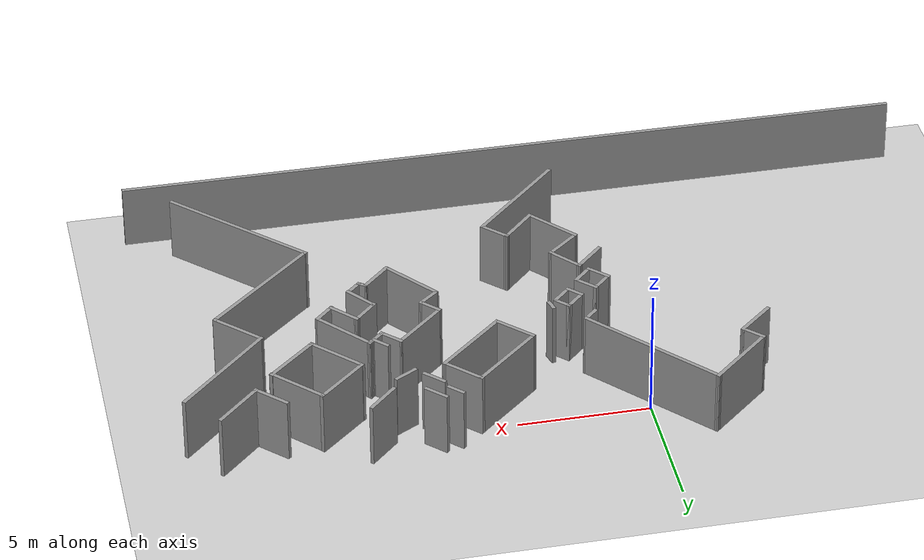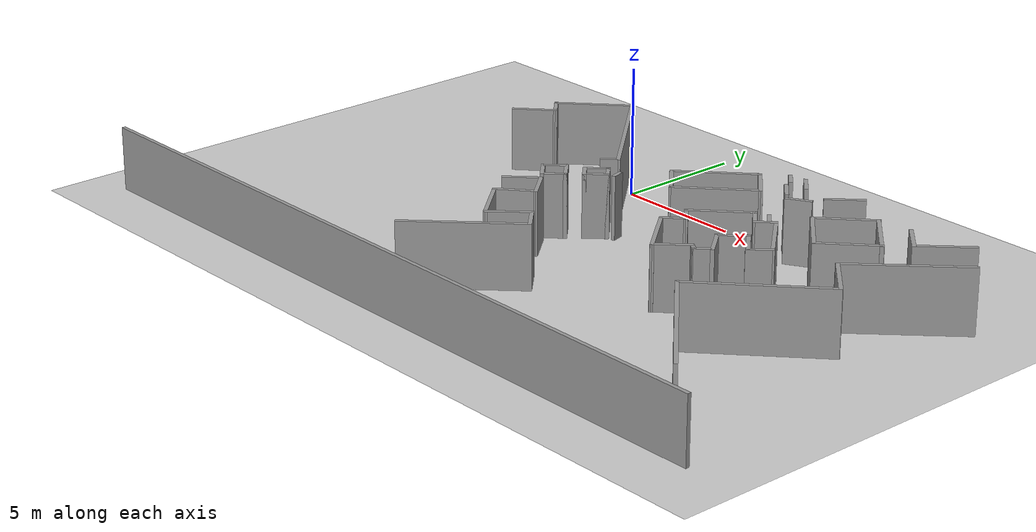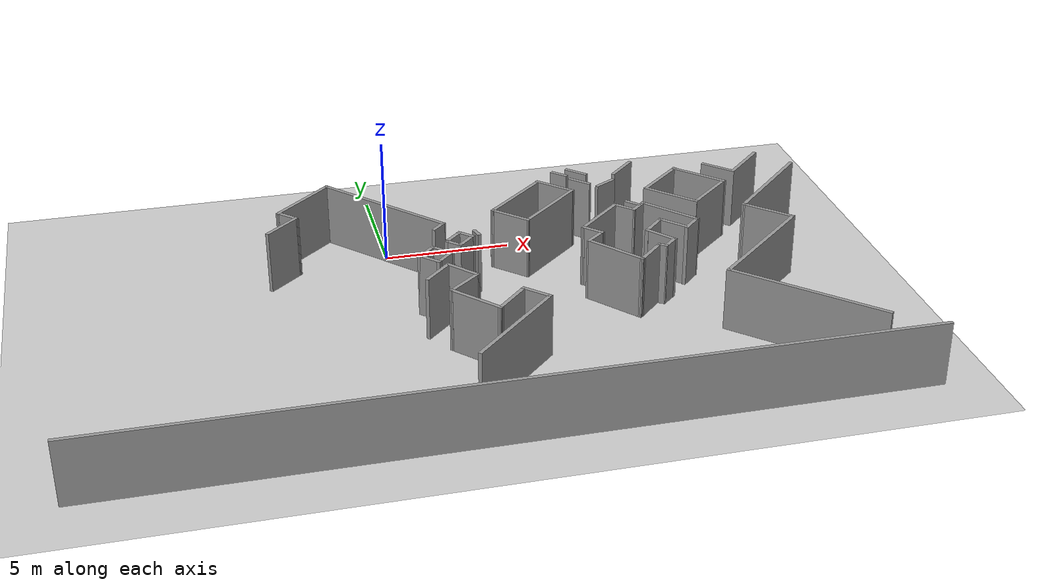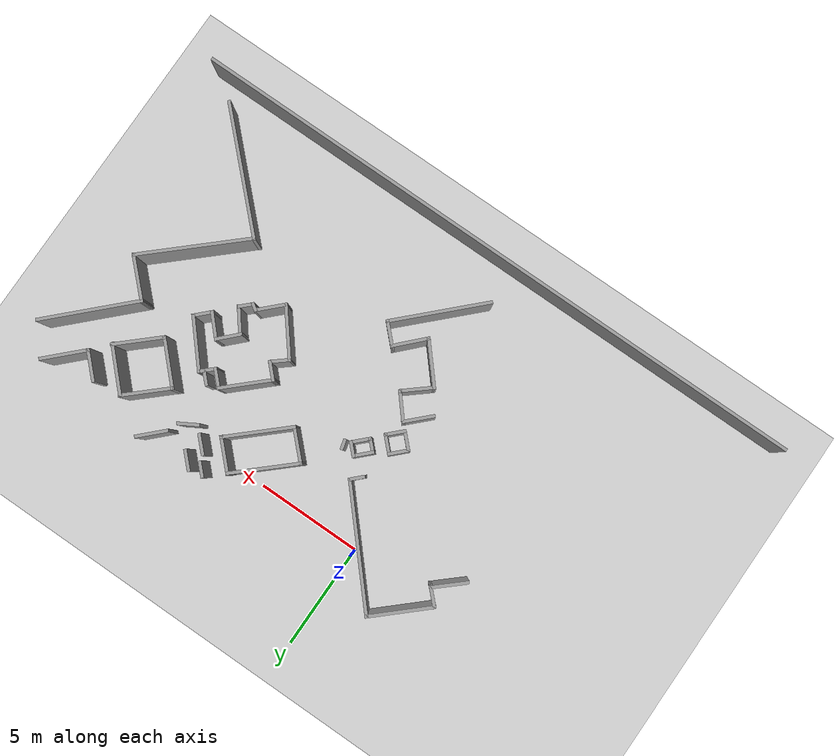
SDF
<sdf version="1.7">
 <world name="default">
  <model name="ground_plane">
   <static>1</static>
   <link name="link">
    <collision name="collision">
     <geometry><plane><normal>0 0 1</normal><size>100 100</size></plane></geometry>
     <surface>
      <contact><collide_bitmask>65535</collide_bitmask></contact>
      <friction><ode><mu>100</mu><mu2>50</mu2></ode></friction>
     </surface>
    </collision>
    <visual name="visual">
     <cast_shadows>0</cast_shadows>
     <geometry><plane><normal>0 0 1</normal><size>100 100</size></plane></geometry>
     <material>
      <script><uri>file://media/materials/scripts/gazebo.material</uri><name>Gazebo/Grey</name></script>
      <ambient>0.45 0.45 0.45 1</ambient>
     </material>
    </visual>
   </link>
  </model>
  <model name="grit_v2">
   <pose>2.3598 3.87752 0.097164 0 -0 0</pose>
   <link name="Wall_10">
    <collision name="Wall_10_Collision">
     <geometry><box><size>6.03502 0.15 2.5</size></box></geometry>
     <pose>0 0 1.25 0 -0 0</pose>
    </collision>
    <visual name="Wall_10_Visual">
     <pose>0 0 1.25 0 -0 0</pose>
     <geometry><box><size>6.03502 0.15 2.5</size></box></geometry>
     <material>
      <script><uri>file://media/materials/scripts/gazebo.material</uri><name>Gazebo/Grey</name></script>
      <ambient>0.15 0.15 0.15 1</ambient>
     </material>
     <meta><layer>0</layer></meta>
    </visual>
    <pose>-2.43335 -4.21243 0 0 -0 -0.841252</pose>
   </link>
   <link name="Wall_12">
    <collision name="Wall_12_Collision">
     <geometry><box><size>1 0.15 2.5</size></box></geometry>
     <pose>0 0 1.25 0 -0 0</pose>
    </collision>
    <visual name="Wall_12_Visual">
     <pose>0 0 1.25 0 -0 0</pose>
     <geometry><box><size>1 0.15 2.5</size></box></geometry>
     <material>
      <script><uri>file://media/materials/scripts/gazebo.material</uri><name>Gazebo/Grey</name></script>
      <ambient>0.15 0.15 0.15 1</ambient>
     </material>
     <meta><layer>0</layer></meta>
    </visual>
    <pose>-6.26045 -4.30157 0 0 -0 -0.785398</pose>
   </link>
   <link name="Wall_14">
    <collision name="Wall_14_Collision">
     <geometry><box><size>1.74495 0.15 2.5</size></box></geometry>
     <pose>0 0 1.25 0 -0 0</pose>
    </collision>
    <visual name="Wall_14_Visual">
     <pose>0 0 1.25 0 -0 0</pose>
     <geometry><box><size>1.74495 0.15 2.5</size></box></geometry>
     <material>
      <script><uri>file://media/materials/scripts/gazebo.material</uri><name>Gazebo/Grey</name></script>
      <ambient>0.15 0.15 0.15 1</ambient>
     </material>
     <meta><layer>0</layer></meta>
    </visual>
    <pose>-6.5537 -5.13444 0 0 -0 0.730911</pose>
   </link>
   <link name="Wall_16">
    <collision name="Wall_16_Collision">
     <geometry><box><size>3.08635 0.15 2.5</size></box></geometry>
     <pose>0 0 1.25 0 -0 0</pose>
    </collision>
    <visual name="Wall_16_Visual">
     <pose>0 0 1.25 0 -0 0</pose>
     <geometry><box><size>3.08635 0.15 2.5</size></box></geometry>
     <material>
      <script><uri>file://media/materials/scripts/gazebo.material</uri><name>Gazebo/Grey</name></script>
      <ambient>0.15 0.15 0.15 1</ambient>
     </material>
     <meta><layer>0</layer></meta>
    </visual>
    <pose>-5.4778 -3.00995 0 0 -0 -2.40056</pose>
   </link>
   <link name="Wall_195">
    <collision name="Wall_195_Collision">
     <geometry><box><size>1 0.15 2.5</size></box></geometry>
     <pose>0 0 1.25 0 -0 0</pose>
    </collision>
    <visual name="Wall_195_Visual">
     <pose>0 0 1.25 0 -0 0</pose>
     <geometry><box><size>1 0.15 2.5</size></box></geometry>
     <material>
      <script><uri>file://media/materials/scripts/gazebo.material</uri><name>Gazebo/Grey</name></script>
      <ambient>0.15 0.15 0.15 1</ambient>
     </material>
     <meta><layer>0</layer></meta>
    </visual>
    <pose>5.7821 -3.07512 0 0 -0 -0.785398</pose>
   </link>
   <link name="Wall_201">
    <collision name="Wall_201_Collision">
     <geometry><box><size>1.5 0.15 2.5</size></box></geometry>
     <pose>0 0 1.25 0 -0 0</pose>
    </collision>
    <visual name="Wall_201_Visual">
     <pose>0 0 1.25 0 -0 0</pose>
     <geometry><box><size>1.5 0.15 2.5</size></box></geometry>
     <material>
      <script><uri>file://media/materials/scripts/gazebo.material</uri><name>Gazebo/Grey</name></script>
      <ambient>0.15 0.15 0.15 1</ambient>
     </material>
     <meta><layer>0</layer></meta>
    </visual>
    <pose>7.7178 -3.14371 0 0 -0 0.785398</pose>
   </link>
   <link name="Wall_203">
    <collision name="Wall_203_Collision">
     <geometry><box><size>0.75 0.15 2.5</size></box></geometry>
     <pose>0 0 1.25 0 -0 0</pose>
    </collision>
    <visual name="Wall_203_Visual">
     <pose>0 0 1.25 0 -0 0</pose>
     <geometry><box><size>0.75 0.15 2.5</size></box></geometry>
     <material>
      <script><uri>file://media/materials/scripts/gazebo.material</uri><name>Gazebo/Grey</name></script>
      <ambient>0.15 0.15 0.15 1</ambient>
     </material>
     <meta><layer>0</layer></meta>
    </visual>
    <pose>5.05583 -3.10229 0 0 -0 -0.785398</pose>
   </link>
   <link name="Wall_205">
    <collision name="Wall_205_Collision">
     <geometry><box><size>1 0.15 2.5</size></box></geometry>
     <pose>0 0 1.25 0 -0 0</pose>
    </collision>
    <visual name="Wall_205_Visual">
     <pose>0 0 1.25 0 -0 0</pose>
     <geometry><box><size>1 0.15 2.5</size></box></geometry>
     <material>
      <script><uri>file://media/materials/scripts/gazebo.material</uri><name>Gazebo/Grey</name></script>
      <ambient>0.15 0.15 0.15 1</ambient>
     </material>
     <meta><layer>0</layer></meta>
    </visual>
    <pose>5.68338 -3.9797 0 0 -0 -0.785398</pose>
   </link>
   <link name="Wall_207">
    <collision name="Wall_207_Collision">
     <geometry><box><size>1 0.15 2.5</size></box></geometry>
     <pose>0 0 1.25 0 -0 0</pose>
    </collision>
    <visual name="Wall_207_Visual">
     <pose>0 0 1.25 0 -0 0</pose>
     <geometry><box><size>1 0.15 2.5</size></box></geometry>
     <material>
      <script><uri>file://media/materials/scripts/gazebo.material</uri><name>Gazebo/Grey</name></script>
      <ambient>0.15 0.15 0.15 1</ambient>
     </material>
     <meta><layer>0</layer></meta>
    </visual>
    <pose>6.65172 -4.37405 0 0 -0 0.523599</pose>
   </link>
   <link name="Wall_209">
    <collision name="Wall_209_Collision">
     <geometry><box><size>5.43156 0.15 2.5</size></box></geometry>
     <pose>0 0 1.25 0 -0 0</pose>
    </collision>
    <visual name="Wall_209_Visual">
     <pose>0 0 1.25 0 -0 0</pose>
     <geometry><box><size>5.43156 0.15 2.5</size></box></geometry>
     <material>
      <script><uri>file://media/materials/scripts/gazebo.material</uri><name>Gazebo/Grey</name></script>
      <ambient>0.15 0.15 0.15 1</ambient>
     </material>
     <meta><layer>0</layer></meta>
    </visual>
    <pose>10.9652 -10.8513 0 0 -0 -2.40084</pose>
   </link>
   <link name="Wall_211">
    <collision name="Wall_211_Collision">
     <geometry><box><size>2.2123 0.15 2.5</size></box></geometry>
     <pose>0 0 1.25 0 -0 0</pose>
    </collision>
    <visual name="Wall_211_Visual">
     <pose>0 0 1.25 0 -0 0</pose>
     <geometry><box><size>2.2123 0.15 2.5</size></box></geometry>
     <material>
      <script><uri>file://media/materials/scripts/gazebo.material</uri><name>Gazebo/Grey</name></script>
      <ambient>0.15 0.15 0.15 1</ambient>
     </material>
     <meta><layer>0</layer></meta>
    </visual>
    <pose>12.1799 -8.32501 0 0 -0 -0.778502</pose>
   </link>
   <link name="Wall_213">
    <collision name="Wall_213_Collision">
     <geometry><box><size>4.75 0.15 2.5</size></box></geometry>
     <pose>0 0 1.25 0 -0 0</pose>
    </collision>
    <visual name="Wall_213_Visual">
     <pose>0 0 1.25 0 -0 0</pose>
     <geometry><box><size>4.75 0.15 2.5</size></box></geometry>
     <material>
      <script><uri>file://media/materials/scripts/gazebo.material</uri><name>Gazebo/Grey</name></script>
      <ambient>0.15 0.15 0.15 1</ambient>
     </material>
     <meta><layer>0</layer></meta>
    </visual>
    <pose>13.0721 -5.97458 0 0 -0 0.785398</pose>
   </link>
   <link name="Wall_215">
    <collision name="Wall_215_Collision">
     <geometry><box><size>2.25 0.15 2.5</size></box></geometry>
     <pose>0 0 1.25 0 -0 0</pose>
    </collision>
    <visual name="Wall_215_Visual">
     <pose>0 0 1.25 0 -0 0</pose>
     <geometry><box><size>2.25 0.15 2.5</size></box></geometry>
     <material>
      <script><uri>file://media/materials/scripts/gazebo.material</uri><name>Gazebo/Grey</name></script>
      <ambient>0.15 0.15 0.15 1</ambient>
     </material>
     <meta><layer>0</layer></meta>
    </visual>
    <pose>12.8418 -3.7814 0 0 -0 0.785398</pose>
   </link>
   <link name="Wall_217">
    <collision name="Wall_217_Collision">
     <geometry><box><size>1.5 0.15 2.5</size></box></geometry>
     <pose>0 0 1.25 0 -0 0</pose>
    </collision>
    <visual name="Wall_217_Visual">
     <pose>0 0 1.25 0 -0 0</pose>
     <geometry><box><size>1.5 0.15 2.5</size></box></geometry>
     <material>
      <script><uri>file://media/materials/scripts/gazebo.material</uri><name>Gazebo/Grey</name></script>
      <ambient>0.15 0.15 0.15 1</ambient>
     </material>
     <meta><layer>0</layer></meta>
    </visual>
    <pose>11.622 -4.04656 0 0 -0 2.35619</pose>
   </link>
   <link name="Wall_229">
    <collision name="Wall_229_Collision">
     <geometry><box><size>1.5 0.15 2.5</size></box></geometry>
     <pose>0 0 1.25 0 -0 0</pose>
    </collision>
    <visual name="Wall_229_Visual">
     <pose>0 0 1.25 0 -0 0</pose>
     <geometry><box><size>1.5 0.15 2.5</size></box></geometry>
     <material>
      <script><uri>file://media/materials/scripts/gazebo.material</uri><name>Gazebo/Grey</name></script>
      <ambient>0.15 0.15 0.15 1</ambient>
     </material>
     <meta><layer>0</layer></meta>
    </visual>
    <pose>6.64765 -10.5749 0 0 -0 0.785398</pose>
   </link>
   <link name="Wall_230">
    <collision name="Wall_230_Collision">
     <geometry><box><size>0.425678 0.15 2.5</size></box></geometry>
     <pose>0 0 1.25 0 -0 0</pose>
    </collision>
    <visual name="Wall_230_Visual">
     <pose>0 0 1.25 0 -0 0</pose>
     <geometry><box><size>0.425678 0.15 2.5</size></box></geometry>
     <material>
      <script><uri>file://media/materials/scripts/gazebo.material</uri><name>Gazebo/Grey</name></script>
      <ambient>0.15 0.15 0.15 1</ambient>
     </material>
     <meta><layer>0</layer></meta>
    </visual>
    <pose>7.24 -10.1735 0 0 -0 -0.583288</pose>
   </link>
   <link name="Wall_231">
    <collision name="Wall_231_Collision">
     <geometry><box><size>0.759423 0.15 2.5</size></box></geometry>
     <pose>0 0 1.25 0 -0 0</pose>
    </collision>
    <visual name="Wall_231_Visual">
     <pose>0 0 1.25 0 -0 0</pose>
     <geometry><box><size>0.759423 0.15 2.5</size></box></geometry>
     <material>
      <script><uri>file://media/materials/scripts/gazebo.material</uri><name>Gazebo/Grey</name></script>
      <ambient>0.15 0.15 0.15 1</ambient>
     </material>
     <meta><layer>0</layer></meta>
    </visual>
    <pose>7.58248 -10.0373 0 0 -0 0.770053</pose>
   </link>
   <link name="Wall_233">
    <collision name="Wall_233_Collision">
     <geometry><box><size>1.24069 0.15 2.5</size></box></geometry>
     <pose>0 0 1.25 0 -0 0</pose>
    </collision>
    <visual name="Wall_233_Visual">
     <pose>0 0 1.25 0 -0 0</pose>
     <geometry><box><size>1.24069 0.15 2.5</size></box></geometry>
     <material>
      <script><uri>file://media/materials/scripts/gazebo.material</uri><name>Gazebo/Grey</name></script>
      <ambient>0.15 0.15 0.15 1</ambient>
     </material>
     <meta><layer>0</layer></meta>
    </visual>
    <pose>7.42295 -8.4699 0 0 -0 0.793972</pose>
   </link>
   <link name="Wall_234">
    <collision name="Wall_234_Collision">
     <geometry><box><size>1.32572 0.15 2.5</size></box></geometry>
     <pose>0 0 1.25 0 -0 0</pose>
    </collision>
    <visual name="Wall_234_Visual">
     <pose>0 0 1.25 0 -0 0</pose>
     <geometry><box><size>1.32572 0.15 2.5</size></box></geometry>
     <material>
      <script><uri>file://media/materials/scripts/gazebo.material</uri><name>Gazebo/Grey</name></script>
      <ambient>0.15 0.15 0.15 1</ambient>
     </material>
     <meta><layer>0</layer></meta>
    </visual>
    <pose>8.20937 -8.50792 0 0 -0 -0.812842</pose>
   </link>
   <link name="Wall_236">
    <collision name="Wall_236_Collision">
     <geometry><box><size>1.37975 0.15 2.5</size></box></geometry>
     <pose>0 0 1.25 0 -0 0</pose>
    </collision>
    <visual name="Wall_236_Visual">
     <pose>0 0 1.25 0 -0 0</pose>
     <geometry><box><size>1.37975 0.15 2.5</size></box></geometry>
     <material>
      <script><uri>file://media/materials/scripts/gazebo.material</uri><name>Gazebo/Grey</name></script>
      <ambient>0.15 0.15 0.15 1</ambient>
     </material>
     <meta><layer>0</layer></meta>
    </visual>
    <pose>7.44739 -9.34198 0 0 -0 -0.903998</pose>
   </link>
   <link name="Wall_238">
    <collision name="Wall_238_Collision">
     <geometry><box><size>2.58349 0.15 2.5</size></box></geometry>
     <pose>0 0 1.25 0 -0 0</pose>
    </collision>
    <visual name="Wall_238_Visual">
     <pose>0 0 1.25 0 -0 0</pose>
     <geometry><box><size>2.58349 0.15 2.5</size></box></geometry>
     <material>
      <script><uri>file://media/materials/scripts/gazebo.material</uri><name>Gazebo/Grey</name></script>
      <ambient>0.15 0.15 0.15 1</ambient>
     </material>
     <meta><layer>0</layer></meta>
    </visual>
    <pose>5.40717 -10.1045 0 0 -0 -0.892805</pose>
   </link>
   <link name="Wall_240">
    <collision name="Wall_240_Collision">
     <geometry><box><size>1.00291 0.15 2.5</size></box></geometry>
     <pose>0 0 1.25 0 -0 0</pose>
    </collision>
    <visual name="Wall_240_Visual">
     <pose>0 0 1.25 0 -0 0</pose>
     <geometry><box><size>1.00291 0.15 2.5</size></box></geometry>
     <material>
      <script><uri>file://media/materials/scripts/gazebo.material</uri><name>Gazebo/Grey</name></script>
      <ambient>0.15 0.15 0.15 1</ambient>
     </material>
     <meta><layer>0</layer></meta>
    </visual>
    <pose>4.97098 -8.88314 0 0 -0 -2.44457</pose>
   </link>
   <link name="Wall_242">
    <collision name="Wall_242_Collision">
     <geometry><box><size>0.956637 0.15 2.5</size></box></geometry>
     <pose>0 0 1.25 0 -0 0</pose>
    </collision>
    <visual name="Wall_242_Visual">
     <pose>0 0 1.25 0 -0 0</pose>
     <geometry><box><size>0.956637 0.15 2.5</size></box></geometry>
     <material>
      <script><uri>file://media/materials/scripts/gazebo.material</uri><name>Gazebo/Grey</name></script>
      <ambient>0.15 0.15 0.15 1</ambient>
     </material>
     <meta><layer>0</layer></meta>
    </visual>
    <pose>5.01661 -8.32041 0 0 -0 -0.798731</pose>
   </link>
   <link name="Wall_244">
    <collision name="Wall_244_Collision">
     <geometry><box><size>2.52787 0.15 2.5</size></box></geometry>
     <pose>0 0 1.25 0 -0 0</pose>
    </collision>
    <visual name="Wall_244_Visual">
     <pose>0 0 1.25 0 -0 0</pose>
     <geometry><box><size>2.52787 0.15 2.5</size></box></geometry>
     <material>
      <script><uri>file://media/materials/scripts/gazebo.material</uri><name>Gazebo/Grey</name></script>
      <ambient>0.15 0.15 0.15 1</ambient>
     </material>
     <meta><layer>0</layer></meta>
    </visual>
    <pose>5.60214 -7.21778 0 0 -0 -2.38786</pose>
   </link>
   <link name="Wall_246">
    <collision name="Wall_246_Collision">
     <geometry><box><size>1 0.15 2.5</size></box></geometry>
     <pose>0 0 1.25 0 -0 0</pose>
    </collision>
    <visual name="Wall_246_Visual">
     <pose>0 0 1.25 0 -0 0</pose>
     <geometry><box><size>1 0.15 2.5</size></box></geometry>
     <material>
      <script><uri>file://media/materials/scripts/gazebo.material</uri><name>Gazebo/Grey</name></script>
      <ambient>0.15 0.15 0.15 1</ambient>
     </material>
     <meta><layer>0</layer></meta>
    </visual>
    <pose>6.76956 -6.70463 0 0 -0 -0.785398</pose>
   </link>
   <link name="Wall_249">
    <collision name="Wall_249_Collision">
     <geometry><box><size>1 0.15 2.5</size></box></geometry>
     <pose>0 0 1.25 0 -0 0</pose>
    </collision>
    <visual name="Wall_249_Visual">
     <pose>0 0 1.25 0 -0 0</pose>
     <geometry><box><size>1 0.15 2.5</size></box></geometry>
     <material>
      <script><uri>file://media/materials/scripts/gazebo.material</uri><name>Gazebo/Grey</name></script>
      <ambient>0.15 0.15 0.15 1</ambient>
     </material>
     <meta><layer>0</layer></meta>
    </visual>
    <pose>8.914 -8.66475 0 0 -0 0.785398</pose>
   </link>
   <link name="Wall_251">
    <collision name="Wall_251_Collision">
     <geometry><box><size>2.61182 0.15 2.5</size></box></geometry>
     <pose>0 0 1.25 0 -0 0</pose>
    </collision>
    <visual name="Wall_251_Visual">
     <pose>0 0 1.25 0 -0 0</pose>
     <geometry><box><size>2.61182 0.15 2.5</size></box></geometry>
     <material>
      <script><uri>file://media/materials/scripts/gazebo.material</uri><name>Gazebo/Grey</name></script>
      <ambient>0.15 0.15 0.15 1</ambient>
     </material>
     <meta><layer>0</layer></meta>
    </visual>
    <pose>8.40451 -7.4374 0 0 -0 -0.852552</pose>
   </link>
   <link name="Wall_253">
    <collision name="Wall_253_Collision">
     <geometry><box><size>0.870841 0.15 2.5</size></box></geometry>
     <pose>0 0 1.25 0 -0 0</pose>
    </collision>
    <visual name="Wall_253_Visual">
     <pose>0 0 1.25 0 -0 0</pose>
     <geometry><box><size>0.870841 0.15 2.5</size></box></geometry>
     <material>
      <script><uri>file://media/materials/scripts/gazebo.material</uri><name>Gazebo/Grey</name></script>
      <ambient>0.15 0.15 0.15 1</ambient>
     </material>
     <meta><layer>0</layer></meta>
    </visual>
    <pose>7.33228 -6.75786 0 0 -0 -2.38546</pose>
   </link>
   <link name="Wall_255">
    <collision name="Wall_255_Collision">
     <geometry><box><size>0.75 0.15 2.5</size></box></geometry>
     <pose>0 0 1.25 0 -0 0</pose>
    </collision>
    <visual name="Wall_255_Visual">
     <pose>0 0 1.25 0 -0 0</pose>
     <geometry><box><size>0.75 0.15 2.5</size></box></geometry>
     <material>
      <script><uri>file://media/materials/scripts/gazebo.material</uri><name>Gazebo/Grey</name></script>
      <ambient>0.15 0.15 0.15 1</ambient>
     </material>
     <meta><layer>0</layer></meta>
    </visual>
    <pose>7.21348 -6.44895 0 0 -0 -0.785398</pose>
   </link>
   <link name="Wall_257">
    <collision name="Wall_257_Collision">
     <geometry><box><size>2.44183 0.15 2.5</size></box></geometry>
     <pose>0 0 1.25 0 -0 0</pose>
    </collision>
    <visual name="Wall_257_Visual">
     <pose>0 0 1.25 0 -0 0</pose>
     <geometry><box><size>2.44183 0.15 2.5</size></box></geometry>
     <material>
      <script><uri>file://media/materials/scripts/gazebo.material</uri><name>Gazebo/Grey</name></script>
      <ambient>0.15 0.15 0.15 1</ambient>
     </material>
     <meta><layer>0</layer></meta>
    </visual>
    <pose>8.96987 -4.47653 0 0 -0 0.740499</pose>
   </link>
   <link name="Wall_258">
    <collision name="Wall_258_Collision">
     <geometry><box><size>2.40915 0.15 2.5</size></box></geometry>
     <pose>0 0 1.25 0 -0 0</pose>
    </collision>
    <visual name="Wall_258_Visual">
     <pose>0 0 1.25 0 -0 0</pose>
     <geometry><box><size>2.40915 0.15 2.5</size></box></geometry>
     <material>
      <script><uri>file://media/materials/scripts/gazebo.material</uri><name>Gazebo/Grey</name></script>
      <ambient>0.15 0.15 0.15 1</ambient>
     </material>
     <meta><layer>0</layer></meta>
    </visual>
    <pose>10.6045 -4.53847 0 0 -0 -0.797817</pose>
   </link>
   <link name="Wall_259">
    <collision name="Wall_259_Collision">
     <geometry><box><size>2.44183 0.15 2.5</size></box></geometry>
     <pose>0 0 1.25 0 -0 0</pose>
    </collision>
    <visual name="Wall_259_Visual">
     <pose>0 0 1.25 0 -0 0</pose>
     <geometry><box><size>2.44183 0.15 2.5</size></box></geometry>
     <material>
      <script><uri>file://media/materials/scripts/gazebo.material</uri><name>Gazebo/Grey</name></script>
      <ambient>0.15 0.15 0.15 1</ambient>
     </material>
     <meta><layer>0</layer></meta>
    </visual>
    <pose>10.5474 -6.09371 0 0 -0 -2.40109</pose>
   </link>
   <link name="Wall_260">
    <collision name="Wall_260_Collision">
     <geometry><box><size>2.40915 0.15 2.5</size></box></geometry>
     <pose>0 0 1.25 0 -0 0</pose>
    </collision>
    <visual name="Wall_260_Visual">
     <pose>0 0 1.25 0 -0 0</pose>
     <geometry><box><size>2.40915 0.15 2.5</size></box></geometry>
     <material>
      <script><uri>file://media/materials/scripts/gazebo.material</uri><name>Gazebo/Grey</name></script>
      <ambient>0.15 0.15 0.15 1</ambient>
     </material>
     <meta><layer>0</layer></meta>
    </visual>
    <pose>8.89956 -6.05822 0 0 -0 2.34378</pose>
   </link>
   <link name="Wall_32">
    <collision name="Wall_32_Collision">
     <geometry><box><size>0.75 0.15 2.5</size></box></geometry>
     <pose>0 0 1.25 0 -0 0</pose>
    </collision>
    <visual name="Wall_32_Visual">
     <pose>0 0 1.25 0 -0 0</pose>
     <geometry><box><size>0.75 0.15 2.5</size></box></geometry>
     <material>
      <script><uri>file://media/materials/scripts/gazebo.material</uri><name>Gazebo/Grey</name></script>
      <ambient>0.15 0.15 0.15 1</ambient>
     </material>
     <meta><layer>0</layer></meta>
    </visual>
    <pose>0.193138 -7.53596 0 0 -0 -0.785398</pose>
   </link>
   <link name="Wall_33">
    <collision name="Wall_33_Collision">
     <geometry><box><size>1 0.15 2.5</size></box></geometry>
     <pose>0 0 1.25 0 -0 0</pose>
    </collision>
    <visual name="Wall_33_Visual">
     <pose>0 0 1.25 0 -0 0</pose>
     <geometry><box><size>1 0.15 2.5</size></box></geometry>
     <material>
      <script><uri>file://media/materials/scripts/gazebo.material</uri><name>Gazebo/Grey</name></script>
      <ambient>0.15 0.15 0.15 1</ambient>
     </material>
     <meta><layer>0</layer></meta>
    </visual>
    <pose>0.10475 -8.04861 0 0 -0 -2.35619</pose>
   </link>
   <link name="Wall_34">
    <collision name="Wall_34_Collision">
     <geometry><box><size>0.75 0.15 2.5</size></box></geometry>
     <pose>0 0 1.25 0 -0 0</pose>
    </collision>
    <visual name="Wall_34_Visual">
     <pose>0 0 1.25 0 -0 0</pose>
     <geometry><box><size>0.75 0.15 2.5</size></box></geometry>
     <material>
      <script><uri>file://media/materials/scripts/gazebo.material</uri><name>Gazebo/Grey</name></script>
      <ambient>0.15 0.15 0.15 1</ambient>
     </material>
     <meta><layer>0</layer></meta>
    </visual>
    <pose>-0.407903 -8.137 0 0 -0 2.35619</pose>
   </link>
   <link name="Wall_35">
    <collision name="Wall_35_Collision">
     <geometry><box><size>1 0.15 2.5</size></box></geometry>
     <pose>0 0 1.25 0 -0 0</pose>
    </collision>
    <visual name="Wall_35_Visual">
     <pose>0 0 1.25 0 -0 0</pose>
     <geometry><box><size>1 0.15 2.5</size></box></geometry>
     <material>
      <script><uri>file://media/materials/scripts/gazebo.material</uri><name>Gazebo/Grey</name></script>
      <ambient>0.15 0.15 0.15 1</ambient>
     </material>
     <meta><layer>0</layer></meta>
    </visual>
    <pose>-0.319514 -7.62435 0 0 -0 0.785398</pose>
   </link>
   <link name="Wall_37">
    <collision name="Wall_37_Collision">
     <geometry><box><size>1 0.15 2.5</size></box></geometry>
     <pose>0 0 1.25 0 -0 0</pose>
    </collision>
    <visual name="Wall_37_Visual">
     <pose>0 0 1.25 0 -0 0</pose>
     <geometry><box><size>1 0.15 2.5</size></box></geometry>
     <material>
      <script><uri>file://media/materials/scripts/gazebo.material</uri><name>Gazebo/Grey</name></script>
      <ambient>0.15 0.15 0.15 1</ambient>
     </material>
     <meta><layer>0</layer></meta>
    </visual>
    <pose>-0.937474 -8.56735 0 0 -0 -0.785398</pose>
   </link>
   <link name="Wall_39">
    <collision name="Wall_39_Collision">
     <geometry><box><size>1 0.15 2.5</size></box></geometry>
     <pose>0 0 1.25 0 -0 0</pose>
    </collision>
    <visual name="Wall_39_Visual">
     <pose>0 0 1.25 0 -0 0</pose>
     <geometry><box><size>1 0.15 2.5</size></box></geometry>
     <material>
      <script><uri>file://media/materials/scripts/gazebo.material</uri><name>Gazebo/Grey</name></script>
      <ambient>0.15 0.15 0.15 1</ambient>
     </material>
     <meta><layer>0</layer></meta>
    </visual>
    <pose>-1.53851 -8.56735 0 0 -0 -2.35619</pose>
   </link>
   <link name="Wall_4">
    <collision name="Wall_4_Collision">
     <geometry><box><size>30.5 0.15 2.5</size></box></geometry>
     <pose>0 0 1.25 0 -0 0</pose>
    </collision>
    <visual name="Wall_4_Visual">
     <pose>0 0 1.25 0 -0 0</pose>
     <geometry><box><size>30.5 0.15 2.5</size></box></geometry>
     <material>
      <script><uri>file://media/materials/scripts/gazebo.material</uri><name>Gazebo/Grey</name></script>
      <ambient>0.15 0.15 0.15 1</ambient>
     </material>
     <meta><layer>0</layer></meta>
    </visual>
    <pose>-0.034886 -18.175 0 0 -0 3.14159</pose>
   </link>
   <link name="Wall_40">
    <collision name="Wall_40_Collision">
     <geometry><box><size>1 0.15 2.5</size></box></geometry>
     <pose>0 0 1.25 0 -0 0</pose>
    </collision>
    <visual name="Wall_40_Visual">
     <pose>0 0 1.25 0 -0 0</pose>
     <geometry><box><size>1 0.15 2.5</size></box></geometry>
     <material>
      <script><uri>file://media/materials/scripts/gazebo.material</uri><name>Gazebo/Grey</name></script>
      <ambient>0.15 0.15 0.15 1</ambient>
     </material>
     <meta><layer>0</layer></meta>
    </visual>
    <pose>-1.53851 -9.16839 0 0 -0 -0.785398</pose>
   </link>
   <link name="Wall_41">
    <collision name="Wall_41_Collision">
     <geometry><box><size>1 0.15 2.5</size></box></geometry>
     <pose>0 0 1.25 0 -0 0</pose>
    </collision>
    <visual name="Wall_41_Visual">
     <pose>0 0 1.25 0 -0 0</pose>
     <geometry><box><size>1 0.15 2.5</size></box></geometry>
     <material>
      <script><uri>file://media/materials/scripts/gazebo.material</uri><name>Gazebo/Grey</name></script>
      <ambient>0.15 0.15 0.15 1</ambient>
     </material>
     <meta><layer>0</layer></meta>
    </visual>
    <pose>-0.937474 -9.16839 0 0 -0 0.785398</pose>
   </link>
   <link name="Wall_44">
    <collision name="Wall_44_Collision">
     <geometry><box><size>0.5 0.15 2.5</size></box></geometry>
     <pose>0 0 1.25 0 -0 0</pose>
    </collision>
    <visual name="Wall_44_Visual">
     <pose>0 0 1.25 0 -0 0</pose>
     <geometry><box><size>0.5 0.15 2.5</size></box></geometry>
     <material>
      <script><uri>file://media/materials/scripts/gazebo.material</uri><name>Gazebo/Grey</name></script>
      <ambient>0.15 0.15 0.15 1</ambient>
     </material>
     <meta><layer>0</layer></meta>
    </visual>
    <pose>0.622669 -7.48316 0 0 -0 -1.309</pose>
   </link>
   <link name="Wall_46">
    <collision name="Wall_46_Collision">
     <geometry><box><size>1.5 0.15 2.5</size></box></geometry>
     <pose>0 0 1.25 0 -0 0</pose>
    </collision>
    <visual name="Wall_46_Visual">
     <pose>0 0 1.25 0 -0 0</pose>
     <geometry><box><size>1.5 0.15 2.5</size></box></geometry>
     <material>
      <script><uri>file://media/materials/scripts/gazebo.material</uri><name>Gazebo/Grey</name></script>
      <ambient>0.15 0.15 0.15 1</ambient>
     </material>
     <meta><layer>0</layer></meta>
    </visual>
    <pose>-1.42001 -10.2364 0 0 -0 0.785398</pose>
   </link>
   <link name="Wall_48">
    <collision name="Wall_48_Collision">
     <geometry><box><size>1.49148 0.15 2.5</size></box></geometry>
     <pose>0 0 1.25 0 -0 0</pose>
    </collision>
    <visual name="Wall_48_Visual">
     <pose>0 0 1.25 0 -0 0</pose>
     <geometry><box><size>1.49148 0.15 2.5</size></box></geometry>
     <material>
      <script><uri>file://media/materials/scripts/gazebo.material</uri><name>Gazebo/Grey</name></script>
      <ambient>0.15 0.15 0.15 1</ambient>
     </material>
     <meta><layer>0</layer></meta>
    </visual>
    <pose>-0.507488 -10.2695 0 0 -0 2.27691</pose>
   </link>
   <link name="Wall_50">
    <collision name="Wall_50_Collision">
     <geometry><box><size>1.64296 0.15 2.5</size></box></geometry>
     <pose>0 0 1.25 0 -0 0</pose>
    </collision>
    <visual name="Wall_50_Visual">
     <pose>0 0 1.25 0 -0 0</pose>
     <geometry><box><size>1.64296 0.15 2.5</size></box></geometry>
     <material>
      <script><uri>file://media/materials/scripts/gazebo.material</uri><name>Gazebo/Grey</name></script>
      <ambient>0.15 0.15 0.15 1</ambient>
     </material>
     <meta><layer>0</layer></meta>
    </visual>
    <pose>-0.642401 -11.2617 0 0 -0 0.70166</pose>
   </link>
   <link name="Wall_52">
    <collision name="Wall_52_Collision">
     <geometry><box><size>2.31028 0.15 2.5</size></box></geometry>
     <pose>0 0 1.25 0 -0 0</pose>
    </collision>
    <visual name="Wall_52_Visual">
     <pose>0 0 1.25 0 -0 0</pose>
     <geometry><box><size>2.31028 0.15 2.5</size></box></geometry>
     <material>
      <script><uri>file://media/materials/scripts/gazebo.material</uri><name>Gazebo/Grey</name></script>
      <ambient>0.15 0.15 0.15 1</ambient>
     </material>
     <meta><layer>0</layer></meta>
    </visual>
    <pose>-0.503256 -12.5582 0 0 -0 2.28718</pose>
   </link>
   <link name="Wall_54">
    <collision name="Wall_54_Collision">
     <geometry><box><size>1.77667 0.15 2.5</size></box></geometry>
     <pose>0 0 1.25 0 -0 0</pose>
    </collision>
    <visual name="Wall_54_Visual">
     <pose>0 0 1.25 0 -0 0</pose>
     <geometry><box><size>1.77667 0.15 2.5</size></box></geometry>
     <material>
      <script><uri>file://media/materials/scripts/gazebo.material</uri><name>Gazebo/Grey</name></script>
      <ambient>0.15 0.15 0.15 1</ambient>
     </material>
     <meta><layer>0</layer></meta>
    </visual>
    <pose>0.76953 -12.7863 0 0 -0 -2.3362</pose>
   </link>
   <link name="Wall_56">
    <collision name="Wall_56_Collision">
     <geometry><box><size>1.25 0.15 2.5</size></box></geometry>
     <pose>0 0 1.25 0 -0 0</pose>
    </collision>
    <visual name="Wall_56_Visual">
     <pose>0 0 1.25 0 -0 0</pose>
     <geometry><box><size>1.25 0.15 2.5</size></box></geometry>
     <material>
      <script><uri>file://media/materials/scripts/gazebo.material</uri><name>Gazebo/Grey</name></script>
      <ambient>0.15 0.15 0.15 1</ambient>
     </material>
     <meta><layer>0</layer></meta>
    </visual>
    <pose>1.72194 -12.5887 0 0 -0 -0.785398</pose>
   </link>
   <link name="Wall_57">
    <collision name="Wall_57_Collision">
     <geometry><box><size>4.75 0.15 2.5</size></box></geometry>
     <pose>0 0 1.25 0 -0 0</pose>
    </collision>
    <visual name="Wall_57_Visual">
     <pose>0 0 1.25 0 -0 0</pose>
     <geometry><box><size>4.75 0.15 2.5</size></box></geometry>
     <material>
      <script><uri>file://media/materials/scripts/gazebo.material</uri><name>Gazebo/Grey</name></script>
      <ambient>0.15 0.15 0.15 1</ambient>
     </material>
     <meta><layer>0</layer></meta>
    </visual>
    <pose>0.484502 -14.604 0 0 -0 -2.35619</pose>
   </link>
   <link name="Wall_59">
    <collision name="Wall_59_Collision">
     <geometry><box><size>6.37815 0.15 2.5</size></box></geometry>
     <pose>0 0 1.25 0 -0 0</pose>
    </collision>
    <visual name="Wall_59_Visual">
     <pose>0 0 1.25 0 -0 0</pose>
     <geometry><box><size>6.37815 0.15 2.5</size></box></geometry>
     <material>
      <script><uri>file://media/materials/scripts/gazebo.material</uri><name>Gazebo/Grey</name></script>
      <ambient>0.15 0.15 0.15 1</ambient>
     </material>
     <meta><layer>0</layer></meta>
    </visual>
    <pose>11.2133 -14.8203 0 0 -0 -0.778547</pose>
   </link>
   <link name="Wall_61">
    <collision name="Wall_61_Collision">
     <geometry><box><size>1.75 0.15 2.5</size></box></geometry>
     <pose>0 0 1.25 0 -0 0</pose>
    </collision>
    <visual name="Wall_61_Visual">
     <pose>0 0 1.25 0 -0 0</pose>
     <geometry><box><size>1.75 0.15 2.5</size></box></geometry>
     <material>
      <script><uri>file://media/materials/scripts/gazebo.material</uri><name>Gazebo/Grey</name></script>
      <ambient>0.15 0.15 0.15 1</ambient>
     </material>
     <meta><layer>0</layer></meta>
    </visual>
    <pose>2.23107 -6.3245 0 0 -0 -0.785398</pose>
   </link>
   <link name="Wall_63">
    <collision name="Wall_63_Collision">
     <geometry><box><size>1.75 0.15 2.5</size></box></geometry>
     <pose>0 0 1.25 0 -0 0</pose>
    </collision>
    <visual name="Wall_63_Visual">
     <pose>0 0 1.25 0 -0 0</pose>
     <geometry><box><size>1.75 0.15 2.5</size></box></geometry>
     <material>
      <script><uri>file://media/materials/scripts/gazebo.material</uri><name>Gazebo/Grey</name></script>
      <ambient>0.15 0.15 0.15 1</ambient>
     </material>
     <meta><layer>0</layer></meta>
    </visual>
    <pose>4.58217 -4.17107 0 0 -0 -0.785398</pose>
   </link>
   <link name="Wall_65">
    <collision name="Wall_65_Collision">
     <geometry><box><size>3.33049 0.15 2.5</size></box></geometry>
     <pose>0 0 1.25 0 -0 0</pose>
    </collision>
    <visual name="Wall_65_Visual">
     <pose>0 0 1.25 0 -0 0</pose>
     <geometry><box><size>3.33049 0.15 2.5</size></box></geometry>
     <material>
      <script><uri>file://media/materials/scripts/gazebo.material</uri><name>Gazebo/Grey</name></script>
      <ambient>0.15 0.15 0.15 1</ambient>
     </material>
     <meta><layer>0</layer></meta>
    </visual>
    <pose>2.84094 -4.68785 0 0 -0 0.738878</pose>
   </link>
   <link name="Wall_67">
    <collision name="Wall_67_Collision">
     <geometry><box><size>3.33825 0.15 2.5</size></box></geometry>
     <pose>0 0 1.25 0 -0 0</pose>
    </collision>
    <visual name="Wall_67_Visual">
     <pose>0 0 1.25 0 -0 0</pose>
     <geometry><box><size>3.33825 0.15 2.5</size></box></geometry>
     <material>
      <script><uri>file://media/materials/scripts/gazebo.material</uri><name>Gazebo/Grey</name></script>
      <ambient>0.15 0.15 0.15 1</ambient>
     </material>
     <meta><layer>0</layer></meta>
    </visual>
    <pose>3.97231 -5.81347 0 0 -0 0.741545</pose>
   </link>
   <link name="Wall_8">
    <collision name="Wall_8_Collision">
     <geometry><box><size>0.75 0.15 2.5</size></box></geometry>
     <pose>0 0 1.25 0 -0 0</pose>
    </collision>
    <visual name="Wall_8_Visual">
     <pose>0 0 1.25 0 -0 0</pose>
     <geometry><box><size>0.75 0.15 2.5</size></box></geometry>
     <material>
      <script><uri>file://media/materials/scripts/gazebo.material</uri><name>Gazebo/Grey</name></script>
      <ambient>0.15 0.15 0.15 1</ambient>
     </material>
     <meta><layer>0</layer></meta>
    </visual>
    <pose>-0.684214 -6.61814 0 0 -0 -2.35619</pose>
   </link>
   <static>1</static>
  </model>
 </world>
</sdf>
